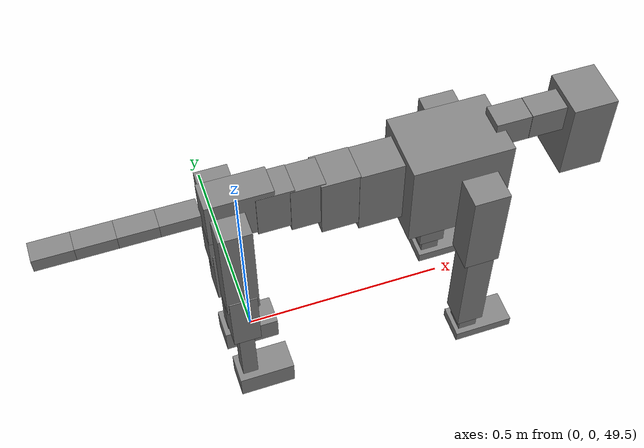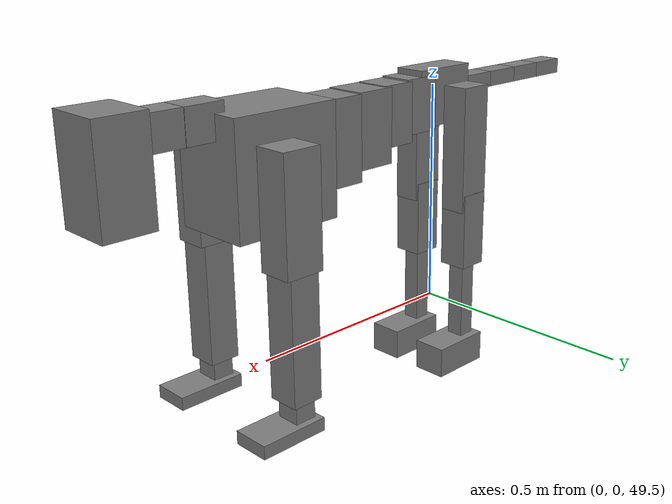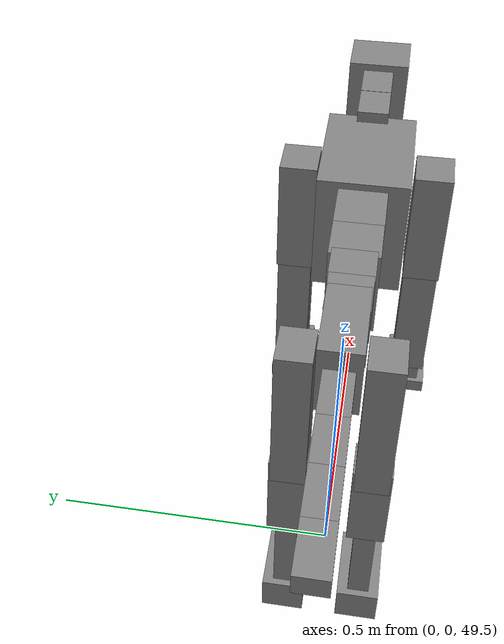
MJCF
<mujoco model="dog">

    <default>
        <joint armature="0.02" stiffness="1" damping="0.2" limited="true"/>
        <geom condim="3" friction="1 0.05 0.05" margin="0.01"/>
        <motor ctrllimited="true" ctrlrange="-1.0 1.0" forcelimited="true" gear="50"/>
    </default>

    <compiler inertiafromgeom="true" angle="radian"/>

    <option timestep="0.016" iterations="50" tolerance="1e-10" solver="Newton" jacobian="dense" cone="pyramidal"/>

    <size nconmax="20000" njmax="60000" nstack="5000000"/>
    <visual>
        <map force="0.1" zfar="30"/>
        <rgba haze="0.15 0.25 0.35 1"/>
        <quality shadowsize="2048"/>
        <global offwidth="800" offheight="800"/>
    </visual>

    <asset>
        <texture type="skybox" builtin="gradient" rgb1="0.3 0.5 0.7" rgb2="0 0 0" width="512" height="512"/>
        <texture name="texplane" type="2d" builtin="checker" rgb1=".2 .3 .4" rgb2=".1 0.15 0.2" width="512" height="512"
                 mark="cross" markrgb=".8 .8 .8"/>
        <texture name="texgeom" type="cube" builtin="flat" mark="cross" width="127" height="1278" rgb1="0.8 0.6 0.4"
                 rgb2="0.8 0.6 0.4" markrgb="1 1 1" random="0.01"/>

        <material name="matplane" reflectance="0.3" texture="texplane" texrepeat="1 1" texuniform="true"/>
        <material name="matgeom" texture="texgeom" texuniform="true" rgba="0.8 0.6 .4 1"/>
    </asset>

    <worldbody>
        <geom name="floor" pos="0 0 0" size="0 0 .25" type="plane" material="matplane" condim="3"/>

        <light directional="false" diffuse=".2 .2 .2" specular="0 0 0" pos="0 0 5" dir="0 0 -1" castshadow="false"/>
        <light mode="targetbodycom" target="torso" directional="false" diffuse=".8 .8 .8" specular="0.3 0.3 0.3"
               pos="0 0 4.0" dir="0 0 -1"/>

        <body name="root" pos="0 0 50">
            <freejoint name="root_1"/>
            <geom type="box" pos="0 0 -0.02" size="0.0774  0.0358  0.063" density="2030"/>

            <body name="spine1" pos="0.054 0 0">
                <joint name="spine1_y" axis="0 1 0" range="0 0.7" limited="true"/>
                <geom type="box" pos="0.02375 0 -0.03" size="0.04375  0.0375  0.05985" density="2030"/>

                <body name="spine2" pos="0.0612 0 0">
                    <joint name="spine2_y" axis="0 1 0" range="-0.15 0.15" limited="true"/>
                    <geom type="box" pos="0.03555  0  -0.04" size="0.04055  0.039  0.06615" density="2030"/>

                    <body name="spine3" pos="0.0730 0 0">
                        <joint name="spine3_y" axis="0 1 0" range="-0.15 0.15" limited="true"/>
                        <geom type="box" pos="0.03555  0  -0.057" size="0.04555  0.0445  0.081" density="2030"/>

                        <body name="spine4" pos="0.0780 0 0">
                            <joint name="spine4_y" axis="0 1 0" range="-0.15 0.15" limited="true"/>
                            <geom type="box" pos="0.05265  0  -0.07" size="0.05265  0.045  0.09135" density="2030"/>

                            <body name="torso" pos="0.1082 0 0">
                                <joint name="torso_y" axis="0 1 0" range="-0.15 0.15" limited="true"/>
                                <geom type="box" pos="0.11925  0  -0.085" size="0.11925  0.085  0.11745"
                                      density="2030"/>

                                <body name="neck1" pos="0.2160  0   0.0180">
                                    <joint name="neck1_y" axis="0 1 0" range="-1.2  -1" limited="true"/>
                                    <geom type="box" pos="0.0423  0  0" size="0.0423  0.03  0.036" density="2325"/>

                                    <body name="neck2" pos="0.0853  0  0">
                                        <joint name="neck2_y" axis="0 1 0" range="0.1  0" limited="true"/>
                                        <geom type="box" pos="0.0423  0  0" size="0.0423  0.03  0.036" density="2325"/>

                                        <body name="head" pos="0.0853  0  0">
                                            <joint name="head_y" axis="0 1 0" range="-0.3  -0.2" limited="true"/>
                                            <geom type="box" pos="0.0531  0  -0.055" size="0.0531  0.06  0.1044"
                                                  density="4030"/>

                                        </body>
                                    </body>
                                </body>

                                <body name="front_shoulder" pos="0.156  0   -0.0480">
                                    <joint name="front_shoulder_y" axis="0 1 0" range="-1 1.5" limited="true"/>
                                    <geom type="box" pos="0 0.13 -0.0927" size="0.0428  0.0366  0.1194" density="1158"/>
                                    <geom type="box" pos="0 -0.13 -0.0927" size="0.0428  0.0366  0.1194"
                                          density="1158"/>

                                    <body name="front_elbow" pos="0  0  -0.1854">
                                        <joint name="front_elbow_y" axis="0 1 0" range="-2 0" limited="true"/>
                                        <geom type="box" pos="0 0.13 -0.1437" size="0.0335  0.0342  0.1437"
                                              density="1081"/>
                                        <geom type="box" pos="0 -0.13 -0.1437" size="0.0335  0.0342  0.1437"
                                              density="1081"/>

                                        <body name="front_wrist" pos="0  0  -0.2874">
                                            <joint name="front_wrist_y" axis="0 1 0" range="-0.2 0" limited="true"/>
                                            <geom type="box" pos="0 0.13 -0.0276" size="0.0232  0.0258  0.0408"
                                                  density="1664"/>
                                            <geom type="box" pos="0 -0.13 -0.0276" size="0.0232  0.0258  0.0408"
                                                  density="1664"/>

                                            <body name="front_finger_end" pos="0  0  -0.0552">
                                                <joint name="front_finger_y" axis="0 1 0" range="-0.4 1"
                                                       limited="true"/>
                                                <geom type="box" pos="0.0406  0.13  0.0009"
                                                      size="0.0745  0.0406  0.0141" density="1515"/>
                                                <geom type="box" pos="0.0406  -0.13  0.0009"
                                                      size="0.0745  0.0406  0.0141" density="1515"/>

                                            </body>

                                        </body>
                                    </body>
                                </body>

                            </body>
                        </body>
                    </body>
                </body>
            </body>

            <body name="back_hip" pos="-0.03 0 -0.018">
                <joint name="back_hip_y" axis="0 1 0" range="-1.5 0.3" limited="true"/>
                <geom type="box" pos="0 0.07 -0.1179" size="0.0383  0.0300  0.1407" density="1154"/>
                <geom type="box" pos="0 -0.07 -0.1179" size="0.0383  0.0300  0.1407" density="1154"/>

                <body name="back_knee" pos="0  0  -0.2357">
                    <joint name="back_knee_y" axis="0 1 0" range="0 2.8" limited="true"/>
                    <geom type="box" pos="0 0.07 -0.0701" size="0.0336  0.0331  0.0856" density="1227"/>
                    <geom type="box" pos="0 -0.07 -0.0701" size="0.0336  0.0331  0.0856" density="1227"/>

                    <body name="back_ankle" pos="0  0  -0.1401">
                        <joint name="back_ankle_y" axis="0 1 0" range="-2.2 0" limited="true"/>
                        <geom type="box" pos="0 0.07 -0.1034" size="0.0194  0.0194  0.1146" density="1284"/>
                        <geom type="box" pos="0 -0.07 -0.1034" size="0.0194  0.0194  0.1146" density="1284"/>

                        <body name="back_toe_end" pos="0  0  -0.2067">
                            <joint name="back_toe_y" axis="0 1 0" range="-0.4 1" limited="true"/>
                            <geom type="box" pos="0.0383  0.07  -0.0192" size="0.0702  0.0383  0.0342" density="1515"/>
                            <geom type="box" pos="0.0383  -0.07  -0.0192" size="0.0702  0.0383  0.0342" density="1515"/>

                        </body>
                    </body>
                </body>
            </body>

            <body name="tail1" pos="-0.074 0 -0.006">
                <joint name="tail1_y" axis="0 1 0" range="-0.2 0.2" limited="true"/>
                <geom type="box" pos="-0.0536  0  0" size="0.045  0.025  0.0175" density="1587"/>

                <body name="tail2" pos="-0.09 0 0">
                    <joint name="tail2_y" axis="0 1 0" range="-0.2 0.2" limited="true"/>
                    <geom type="box" pos="-0.0536  0  0" size="0.045  0.025  0.0175" density="1587"/>

                    <body name="tail3" pos="-0.09 0 0">
                        <joint name="tail3_y" axis="0 1 0" range="-0.2 0.2" limited="true"/>
                        <geom type="box" pos="-0.0536  0  0" size="0.045  0.025  0.0175" density="1587"/>

                        <body name="tail4" pos="-0.09 0 0">
                            <joint name="tail4_y" axis="0 1 0" range="-0.2 0.2" limited="true"/>
                            <geom type="box" pos="-0.0536  0  0" size="0.045  0.025  0.0175" density="1587"/>

                        </body>
                    </body>
                </body>
            </body>
        </body>
    </worldbody>

    <actuator>
        <motor joint="spine1_y" forcerange="-150 150     "/>
        <motor joint="spine2_y" forcerange="-150 150     "/>
        <motor joint="spine3_y" forcerange="-150 150     "/>
        <motor joint="spine4_y" forcerange="-150 150     "/>
        <motor joint="torso_y" forcerange="-150 150     "/>
        <motor joint="neck1_y" forcerange="-100 100       "/>
        <motor joint="neck2_y" forcerange="-100 100       "/>
        <motor joint="head_y" forcerange="-150 150       "/>
        <motor joint="front_shoulder_y" forcerange="-147.90 196.19"/>
        <motor joint="front_elbow_y" forcerange="-152.22 196.65"/>
        <motor joint="front_wrist_y" forcerange="-59.67 146.58"/>
        <motor joint="front_finger_y" forcerange="-95.53 81.16"/>
        <motor joint="back_hip_y" forcerange="-305.47 295.14"/>
        <motor joint="back_knee_y" forcerange="-389.10 292.92"/>
        <motor joint="back_angle_y" forcerange="-127.39 82.71"/>
        <motor joint="back_toe_y" forcerange="-112.18 114.05"/>
        <motor joint="tail1_y" forcerange="-50 50     "/>
        <motor joint="tail2_y" forcerange="-50 50     "/>
        <motor joint="tail3_y" forcerange="-50 50     "/>
        <motor joint="tail4_y" forcerange="-50 50     "/>
    </actuator>
</mujoco>
